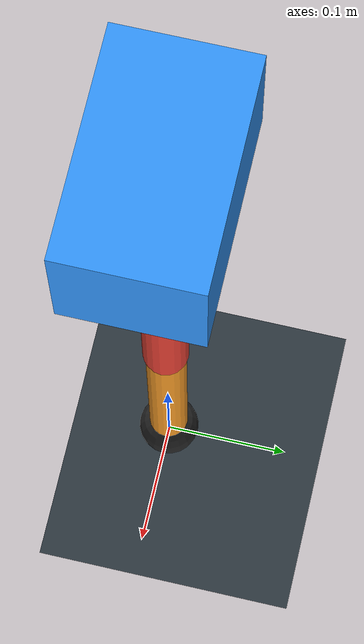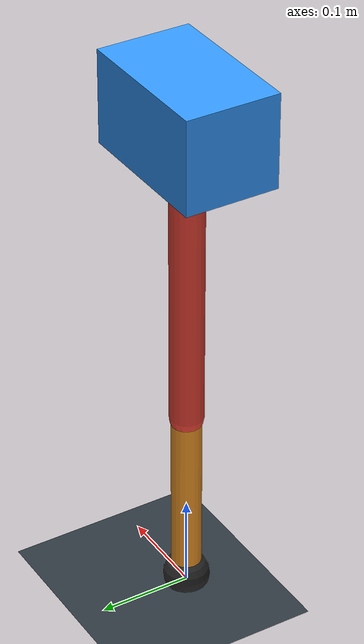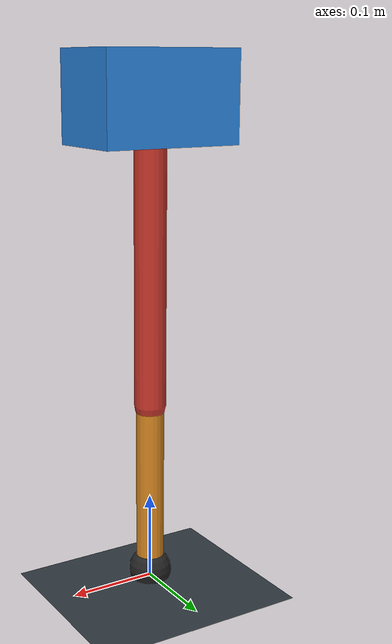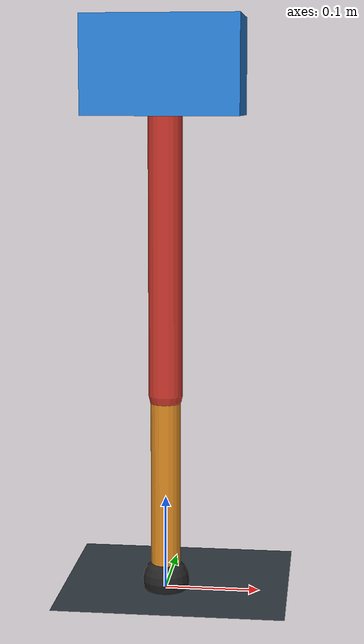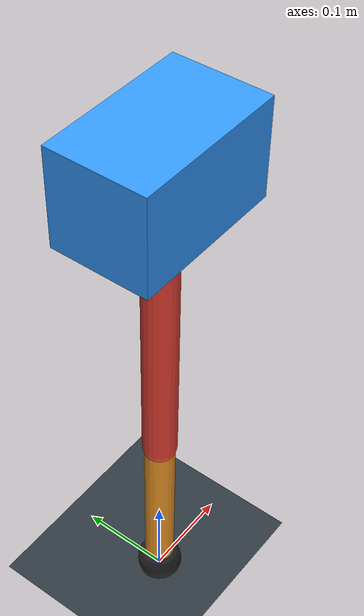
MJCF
<mujoco model="single_axis_two_bar">
  <compiler angle="radian" inertiafromgeom="true"/>
  <option timestep="0.001" integrator="implicitfast" gravity="0 0 -9.81"/>
  <default>
    <joint damping="0.08"/>
    <geom friction="1.2 0.01 0.0001" condim="3"/>
  </default>
  <worldbody>
    <geom name="floor" type="plane" size="5 5 0.1" rgba="0.18 0.22 0.25 1"/>
    <body name="carriage" pos="0 0 0.5538824007376613">
      <joint name="pole_slide" type="slide" axis="0 0 1"/>
      <geom name="payload" type="box" size="0.08 0.05 0.05" mass="2.3726789477181844" rgba="0.2 0.6 1 1"/>
      <body name="thigh" pos="0 0 0">
        <joint name="hip" type="hinge" axis="0 1 0"/>
        <geom name="thigh_link" type="capsule" fromto="0 0 0 0 0 -0.34269181861889886" size="0.018" mass="0.24417244903882634" rgba="0.9 0.25 0.2 1"/>
        <body name="shank" pos="0 0 -0.34269181861889886">
          <joint name="knee" type="hinge" axis="0 1 0"/>
          <geom name="shank_link" type="capsule" fromto="0 0 0 0 0 -0.2025477697704426" size="0.016" mass="0.1443179623940806" rgba="0.95 0.6 0.15 1"/>
          <geom name="foot" type="sphere" pos="0 0 -0.2025477697704426" size="0.025" mass="0.03" rgba="0.15 0.15 0.15 1"/>
          <site name="toe" pos="0 0 -0.2025477697704426" size="0.008"/>
        </body>
      </body>
    </body>
  </worldbody>
  <actuator>
    <motor name="hip_motor" joint="hip" ctrlrange="-21.143219576347327 21.143219576347327"/>
    <motor name="knee_motor" joint="knee" ctrlrange="-91.40624480238446 91.40624480238446"/>
  </actuator>
</mujoco>
